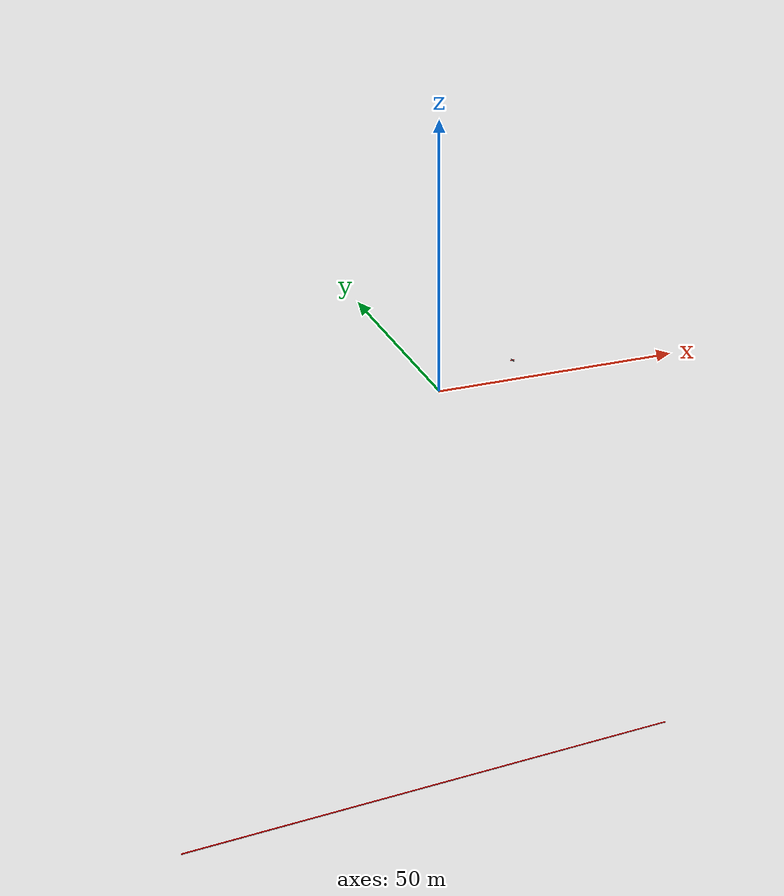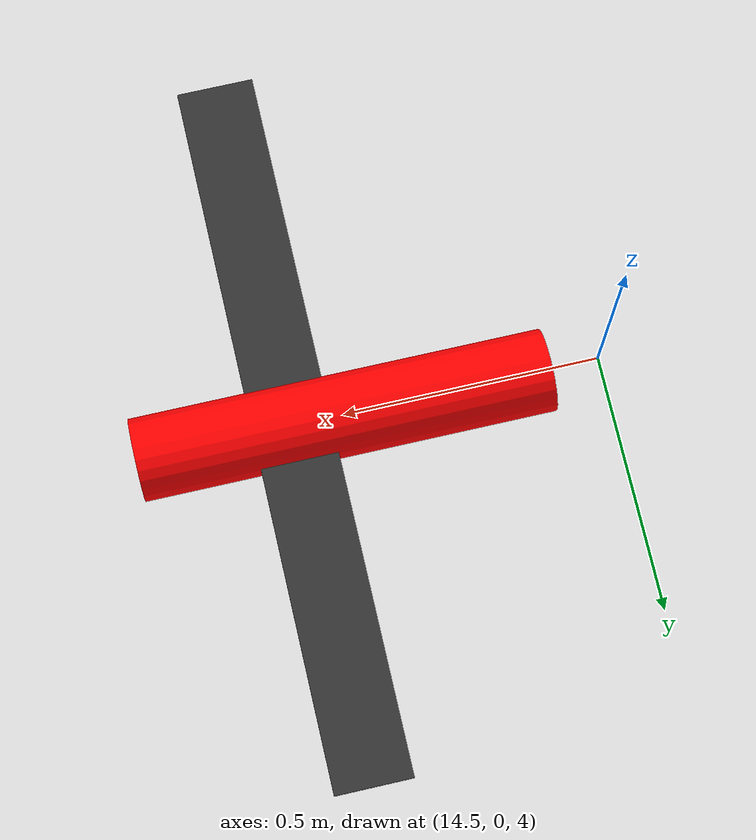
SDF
<?xml version="1.0" ?>
<sdf version="1.6">
  <world name="high_fidelity_interception_world">

    <include>
      <uri>model://sun</uri>
    </include>

    <model name="invisible_ground_plane">
      <static>true</static>
      <link name="link">
        <collision name="collision">
          <geometry>
            <plane>
              <normal>0 0 1</normal>
              <size>100 100</size>
            </plane>
          </geometry>
        </collision>
        </link>
    </model>

    <scene>
      <ambient>0.7 0.7 0.7 1</ambient>
      <background>0.5 0.6 0.8 1</background>
      <shadows>false</shadows>
    </scene>

    <plugin name="gazebo_ros_state" filename="libgazebo_ros_state.so"/>

    <model name="delta_interceptor">
      <static>true</static>
      <pose>0.0 0.0 4.0 0 0 0</pose>
      <link name="base_link">
        <visual name="body">
          <geometry><box><size>0.5 0.5 0.15</size></box></geometry>
          <material>
            <ambient>0.0 0.0 0.8 1</ambient>
            <diffuse>0.0 0.0 0.8 1</diffuse>
          </material>
        </visual>
        <visual name="center_dome">
          <pose>0 0 0.05 0 0 0</pose>
          <geometry><sphere><radius>0.18</radius></sphere></geometry>
          <material>
            <ambient>0.1 0.1 0.1 1</ambient>
            <diffuse>0.1 0.1 0.1 1</diffuse>
          </material>
        </visual>
      </link>
    </model>

    <model name="enemy_drone">
      <static>true</static>
      <pose>15.0 0.0 4.0 0 0 0</pose>
      <link name="base_link">
        <visual name="fuselage">
          <geometry><cylinder><radius>0.08</radius><length>0.8</length></cylinder></geometry>
          <pose>0 0 0 0 1.57079632679 0</pose>
          <material>
            <ambient>1.0 0.0 0.0 1</ambient>
            <diffuse>1.0 0.0 0.0 1</diffuse>
          </material>
        </visual>
        <visual name="wings">
          <pose>0.1 0 0.02 0 0 0</pose>
          <geometry><box><size>0.15 1.4 0.01</size></box></geometry>
          <material>
            <ambient>0.2 0.2 0.2 1</ambient>
            <diffuse>0.2 0.2 0.2 1</diffuse>
          </material>
        </visual>
      </link>
    </model>

    <model name="laser_beam">
      <static>true</static>
      <pose>0 0 -100.0 0 0 0</pose>
      <link name="link">
        <visual name="laser_core">
          <pose>0 0 0 0 1.57079632679 0</pose>
          <geometry>
            <cylinder>
              <radius>0.15</radius>
              <length>120.0</length>
            </cylinder>
          </geometry>
          <material>
            <ambient>1.0 0.0 0.0 1</ambient>
            <diffuse>1.0 0.0 0.0 1</diffuse>
            <emissive>30.0 0.0 0.0 1</emissive>
          </material>
        </visual>
      </link>
    </model>

  </world>
</sdf>
